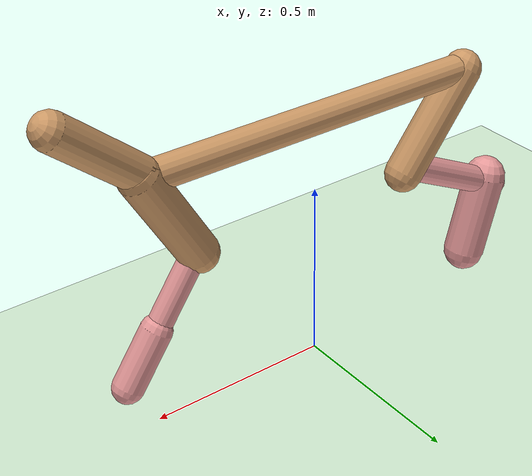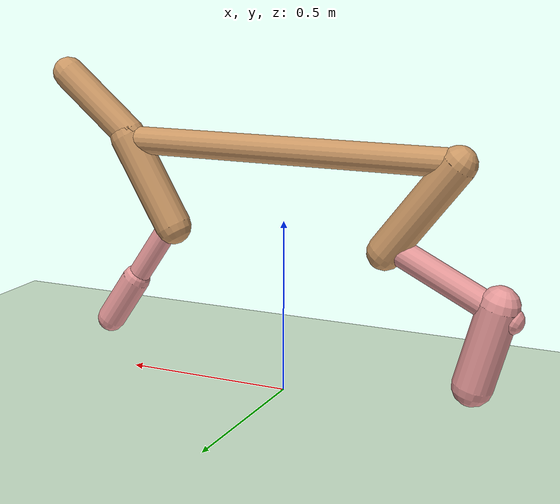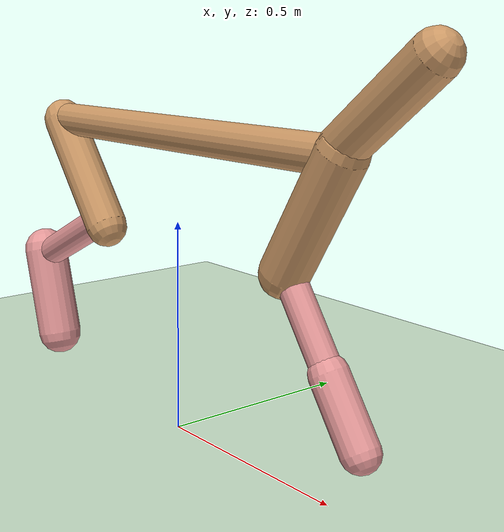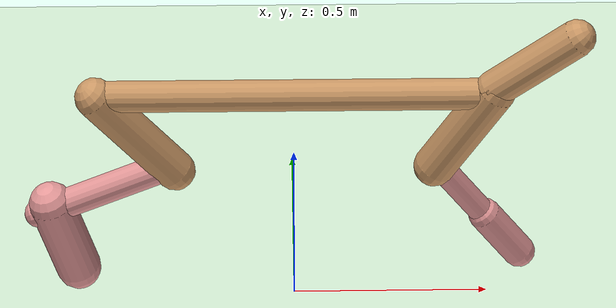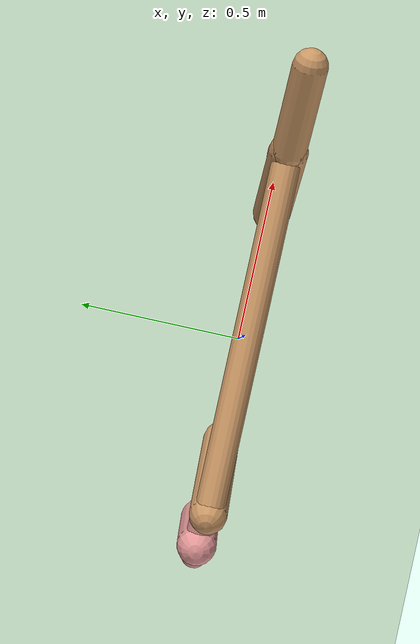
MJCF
<?xml version="1.0" encoding="utf-8"?>
<mujoco model="cheetah">
	<compiler angle="radian" coordinate="local" inertiafromgeom="true" settotalmass="14"></compiler>
	<default>
		<joint armature=".1" damping="0.00794237476735823" limited="true" solimplimit="0 .8 .03" solreflimit=".02 1" stiffness="9.703700549536485"></joint>
		<geom conaffinity="0" condim="3" contype="1" friction="0.3382663490206292 0.08384448802085886 0.07063941633718791" rgba="0.8 0.6 .4 1" solimp="0.0 0.8 0.01" solref="0.02 1"></geom>
		<motor ctrllimited="true" ctrlrange="-1 1"></motor>
	</default>
	<size nstack="300000" nuser_geom="1"></size>
	<option gravity="0 0 -9.81" timestep="0.01"></option>
	<asset>
		<texture builtin="gradient" height="100" rgb1="1 1 1" rgb2="0 0 0" type="skybox" width="100"></texture>
		<texture builtin="flat" height="1278" mark="cross" markrgb="1 1 1" name="texgeom" random="0.01" rgb1="0.8 0.6 0.4" rgb2="0.8 0.6 0.4" type="cube" width="127"></texture>
		<texture builtin="checker" height="100" name="texplane" rgb1="0 0 0" rgb2="0.8 0.8 0.8" type="2d" width="100"></texture>
		<material name="MatPlane" reflectance="0.5" shininess="1" specular="1" texrepeat="60 60" texture="texplane"></material>
		<material name="geom" texture="texgeom" texuniform="true"></material>
	</asset>
	<worldbody>
		<light cutoff="100" diffuse="1 1 1" dir="-0 0 -1.3" directional="true" exponent="1" pos="0 0 1.3" specular=".1 .1 .1"></light>
		<geom conaffinity="1" condim="3" material="MatPlane" name="floor" pos="0 0 0" rgba="0.8 0.9 0.8 1" size="51.03224442614138 48.54755599621028 38.09782041778565" type="plane"></geom>
		<body name="torso" pos="0 0 .7">
			<camera name="track" mode="trackcom" pos="0 -3 0.3" xyaxes="1 0 0 0 0 1"></camera>
			<joint armature="0" axis="1 0 0" damping="0.0" limited="false" name="rootx" pos="0 0 0" stiffness="0.0" type="slide"></joint>
			<joint armature="0" axis="0 0 1" damping="0.0" limited="false" name="rootz" pos="0 0 0" stiffness="0.0" type="slide"></joint>
			<joint armature="0" axis="0 1 0" damping="0.0" limited="false" name="rooty" pos="0 0 0" stiffness="0.0" type="hinge"></joint>
			<geom fromto="-.5 0 0 .5 0 0" name="torso" size="0.04027213381538606" type="capsule"></geom>
			<geom axisangle="0 1 0 .87" name="head" pos=".6 0 .1" size="0.0474939469561343 0.1333509747791246" type="capsule"></geom>
			<body name="bthigh" pos="-.5 0 0">
				<joint axis="0 1 0" damping="6.0779136632695625" name="bthigh" pos="0 0 0" range="-.52 1.05" stiffness="172.71710912370543" type="hinge"></joint>
				<geom axisangle="0 1 0 -3.8" name="bthigh" pos=".1 0 -.13" size="0.05143184932519474 0.16101193117802506" type="capsule"></geom>
				<body name="bshin" pos=".16 0 -.25">
					<joint axis="0 1 0" damping="4.233642649193953" name="bshin" pos="0 0 0" range="-.785 .785" stiffness="204.82084797607644" type="hinge"></joint>
					<geom axisangle="0 1 0 -2.03" name="bshin" pos="-.14 0 -.07" rgba="0.9 0.6 0.6 1" size="0.03815984261469399 0.19297164455514912" type="capsule"></geom>
					<body name="bfoot" pos="-.28 0 -.14">
						<joint axis="0 1 0" damping="2.7548516892181985" name="bfoot" pos="0 0 0" range="-.4 .785" stiffness="91.36018957592175" type="hinge"></joint>
						<geom axisangle="0 1 0 -.27" name="bfoot" pos=".03 0 -.097" rgba="0.9 0.6 0.6 1" size="0.05808018895437351 0.1181548613999838" type="capsule"></geom>
					</body>
				</body>
			</body>
			<body name="fthigh" pos=".5 0 0">
				<joint axis="0 1 0" damping="5.694156108474038" name="fthigh" pos="0 0 0" range="-1 .7" stiffness="146.03496532505113" type="hinge"></joint>
				<geom axisangle="0 1 0 .52" name="fthigh" pos="-.07 0 -.12" size="0.053481372053482405 0.1477503375847022" type="capsule"></geom>
				<body name="fshin" pos="-.14 0 -.24">
					<joint axis="0 1 0" damping="3.228223637310862" name="fshin" pos="0 0 0" range="-1.2 .87" stiffness="151.00502518438756" type="hinge"></joint>
					<geom axisangle="0 1 0 -.6" name="fshin" pos=".065 0 -.09" rgba="0.9 0.6 0.6 1" size="0.03301919286029572 0.11475208278149598" type="capsule"></geom>
					<body name="ffoot" pos=".13 0 -.18">
						<joint axis="0 1 0" damping="1.492780847110638" name="ffoot" pos="0 0 0" range="-.5 .5" stiffness="73.3905669922461" type="hinge"></joint>
						<geom axisangle="0 1 0 -.6" name="ffoot" pos=".045 0 -.07" rgba="0.9 0.6 0.6 1" size="0.042116692279438386 0.08103099155310822" type="capsule"></geom>
					</body>
				</body>
			</body>
		</body>
	</worldbody>
	<actuator>
		<motor gear="120" joint="bthigh" name="bthigh"></motor>
		<motor gear="90" joint="bshin" name="bshin"></motor>
		<motor gear="60" joint="bfoot" name="bfoot"></motor>
		<motor gear="120" joint="fthigh" name="fthigh"></motor>
		<motor gear="60" joint="fshin" name="fshin"></motor>
		<motor gear="30" joint="ffoot" name="ffoot"></motor>
	</actuator>
</mujoco>
